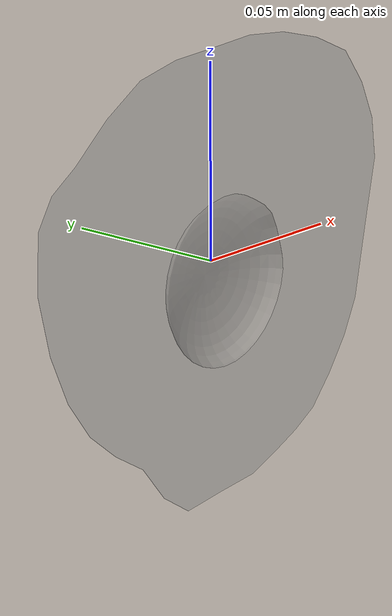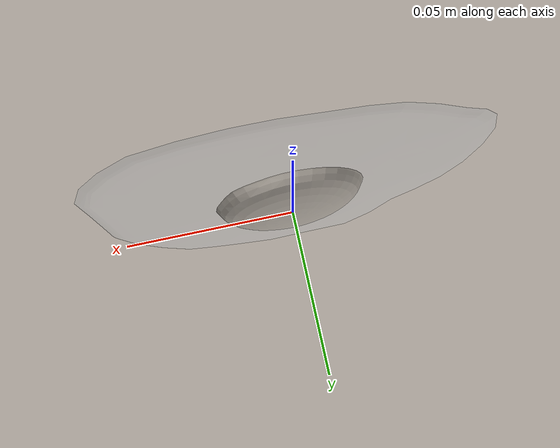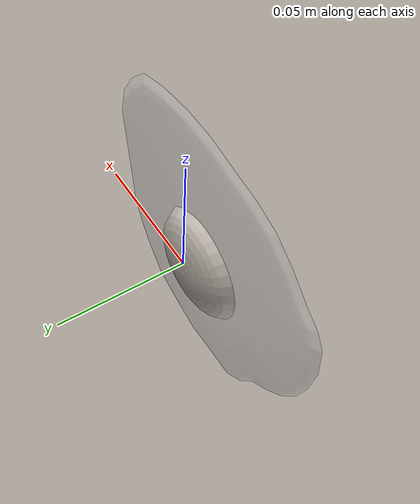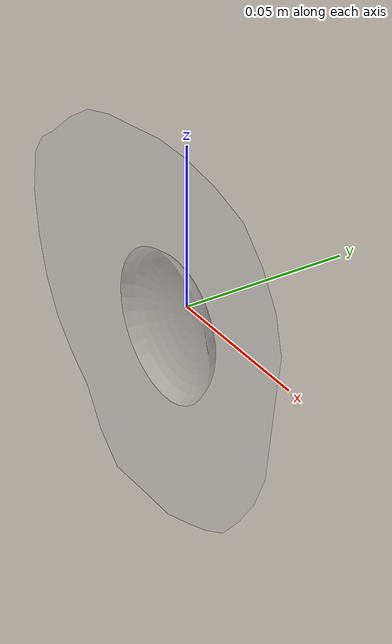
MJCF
<mujoco model="Egg_Cracked_5">
  <compiler autolimits="true" boundmass="0.01" angle="radian"/>
  <default>
    <default class="/">
      <default class="__VISUAL_MJT__">
        <geom contype="0" conaffinity="0" group="0"/>
      </default>
      <default class="__STRUCTURAL_MJT__">
        <geom contype="8" conaffinity="15" group="4" friction="0.90000000000000002 0.90000000000000002 0.001" solref="0.025000000000000001 1" solimp="0.998 0.998 0.001"/>
      </default>
      <default class="__DYNAMIC_MJT__">
        <geom contype="1" conaffinity="15" group="4" friction="0.90000000000000002 0.90000000000000002 0.001" solref="0.025000000000000001 1" solimp="0.998 0.998 0.001"/>
      </default>
    </default>
  </default>
  <asset>
    <texture name="Fried_Egg_White_Uncooked_Mat" type="2d" file="Fried_Egg_AlbedoTransparency.png"/>
    <material name="material_Fried_Egg_White_Uncooked_Mat" class="/" texture="Fried_Egg_White_Uncooked_Mat" specular="0.5" shininess="0.5" rgba="1 1 1 0.5"/>
    <texture name="Fried_Egg_Yolk_Mat" type="2d" file="Fried_Egg_AlbedoTransparency.png"/>
    <material name="material_Fried_Egg_Yolk_Mat" class="/" texture="Fried_Egg_Yolk_Mat" specular="0.5" shininess="0.5" rgba="1 1 1 1"/>
    <mesh name="Egg_Cracked_5_fried_egg_5_0" class="/" file="Egg_Cracked_5_fried_egg_5/Egg_Cracked_5_fried_egg_5_0.obj" scale="1 1 1"/>
    <mesh name="Egg_Cracked_5_fried_egg_5_1" class="/" file="Egg_Cracked_5_fried_egg_5/Egg_Cracked_5_fried_egg_5_1.obj" scale="1 1 1"/>
  </asset>
  <worldbody>
    <body name="Egg_Cracked_5">
      <joint name="Egg_Cracked_5_free" class="/" type="free" pos="0 0 0" axis="0 0 1" stiffness="0" range="0 0" armature="0" damping="0.10000000000000001" frictionloss="0"/>
      <body name="Egg_Cracked_5_fried_egg_5" pos="-0.00044999999999999999 -0.01023 -0.0040499999999999998" quat="1 0 0 0">
        <geom name="Egg_Cracked_5_fried_egg_5_0" class="__VISUAL_MJT__" type="mesh" material="material_Fried_Egg_White_Uncooked_Mat" shellinertia="false" mesh="Egg_Cracked_5_fried_egg_5_0"/>
        <geom name="Egg_Cracked_5_fried_egg_5_1" class="__VISUAL_MJT__" type="mesh" material="material_Fried_Egg_Yolk_Mat" shellinertia="false" mesh="Egg_Cracked_5_fried_egg_5_1"/>
        <geom name="Egg_Cracked_5_PrimitiveCollider_0" class="__DYNAMIC_MJT__" type="box" size="0.063683167099952698 0.010231256484985352 0.059716343879699707" rgba="0 1 0 1" pos="-0.00045405328273773193 0.010231256484985352 0.0040456056594848633" quat="1 0 0 0"/>
      </body>
    </body>
  </worldbody>
</mujoco>
